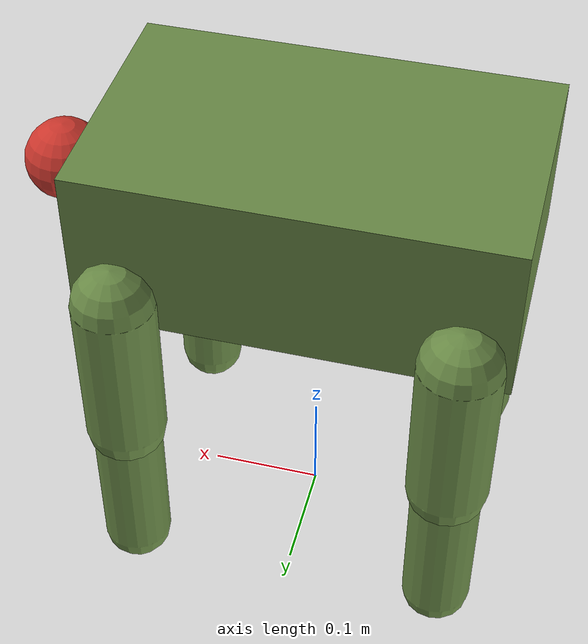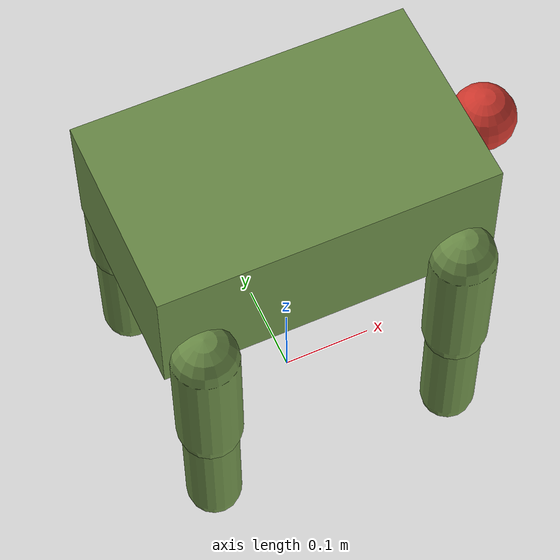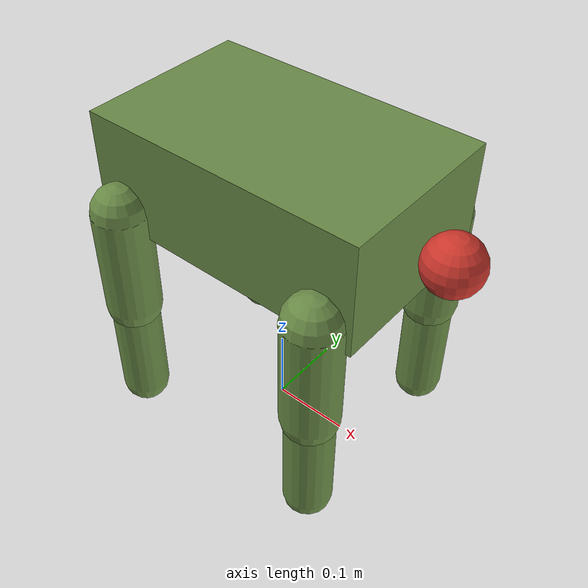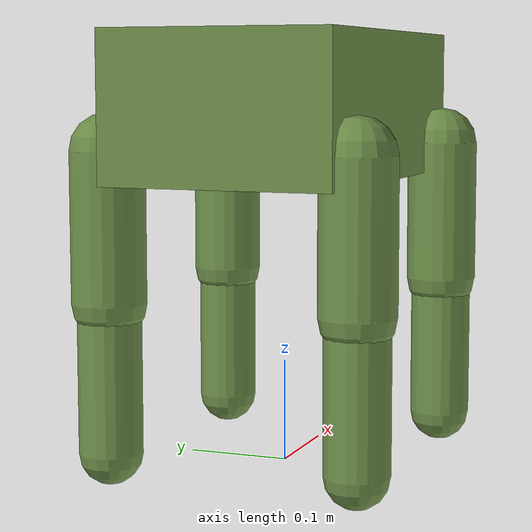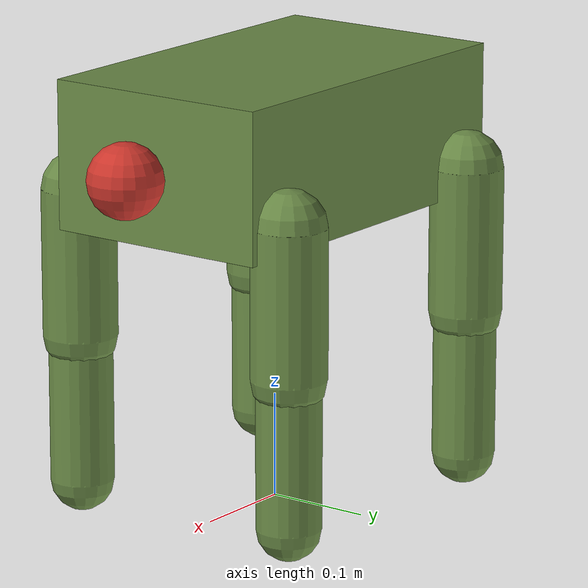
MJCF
<mujoco model="oddling">
  <compiler angle="radian" inertiafromgeom="true"/>
  <option timestep="0.01" gravity="0 0 -9.81" iterations="50" solver="Newton"/>
  <default>
    <joint limited="true" damping="0.5" armature="0.01" stiffness="0.0"/>
    <geom friction="1.0 0.5 0.5" rgba="0.42 0.55 0.28 1" condim="3"/>
    <motor ctrlrange="-1 1" ctrllimited="true"/>
  </default>
  <worldbody>
    <body name="torso" pos="0 0 0.35">
      <freejoint name="root"/>
      <geom name="torso" type="box" size="0.18 0.11 0.07" mass="2.0"/>
      <body name="mouth" pos="0.22 0 0">
        <geom name="mouth_bulb" type="sphere" size="0.035" rgba="0.82 0.22 0.18 1" mass="0.02"/>
      </body>
      <body name="fl_hip" pos="0.14 0.12 -0.04">
        <joint name="fl_hip" type="hinge" axis="0 1 0" range="-0.9 0.9"/>
        <geom type="capsule" fromto="0 0 0 0 0 -0.14" size="0.035" mass="0.25"/>
        <body name="fl_shin" pos="0 0 -0.14">
          <joint name="fl_knee" type="hinge" axis="0 1 0" range="-1.4 0.2"/>
          <geom type="capsule" fromto="0 0 0 0 0 -0.14" size="0.03" mass="0.15"/>
        </body>
      </body>
      <body name="fr_hip" pos="0.14 -0.12 -0.04">
        <joint name="fr_hip" type="hinge" axis="0 1 0" range="-0.9 0.9"/>
        <geom type="capsule" fromto="0 0 0 0 0 -0.14" size="0.035" mass="0.25"/>
        <body name="fr_shin" pos="0 0 -0.14">
          <joint name="fr_knee" type="hinge" axis="0 1 0" range="-1.4 0.2"/>
          <geom type="capsule" fromto="0 0 0 0 0 -0.14" size="0.03" mass="0.15"/>
        </body>
      </body>
      <body name="hl_hip" pos="-0.14 0.12 -0.04">
        <joint name="hl_hip" type="hinge" axis="0 1 0" range="-0.9 0.9"/>
        <geom type="capsule" fromto="0 0 0 0 0 -0.14" size="0.035" mass="0.25"/>
        <body name="hl_shin" pos="0 0 -0.14">
          <joint name="hl_knee" type="hinge" axis="0 1 0" range="-1.4 0.2"/>
          <geom type="capsule" fromto="0 0 0 0 0 -0.14" size="0.03" mass="0.15"/>
        </body>
      </body>
      <body name="hr_hip" pos="-0.14 -0.12 -0.04">
        <joint name="hr_hip" type="hinge" axis="0 1 0" range="-0.9 0.9"/>
        <geom type="capsule" fromto="0 0 0 0 0 -0.14" size="0.035" mass="0.25"/>
        <body name="hr_shin" pos="0 0 -0.14">
          <joint name="hr_knee" type="hinge" axis="0 1 0" range="-1.4 0.2"/>
          <geom type="capsule" fromto="0 0 0 0 0 -0.14" size="0.03" mass="0.15"/>
        </body>
      </body>
    </body>
  </worldbody>
  <actuator>
    <motor name="fl_hip" joint="fl_hip" gear="8"/>
    <motor name="fl_knee" joint="fl_knee" gear="8"/>
    <motor name="fr_hip" joint="fr_hip" gear="8"/>
    <motor name="fr_knee" joint="fr_knee" gear="8"/>
    <motor name="hl_hip" joint="hl_hip" gear="8"/>
    <motor name="hl_knee" joint="hl_knee" gear="8"/>
    <motor name="hr_hip" joint="hr_hip" gear="8"/>
    <motor name="hr_knee" joint="hr_knee" gear="8"/>
  </actuator>
  <sensor>
    <subtreelinvel name="torso_vel" body="torso"/>
  </sensor>
</mujoco>
